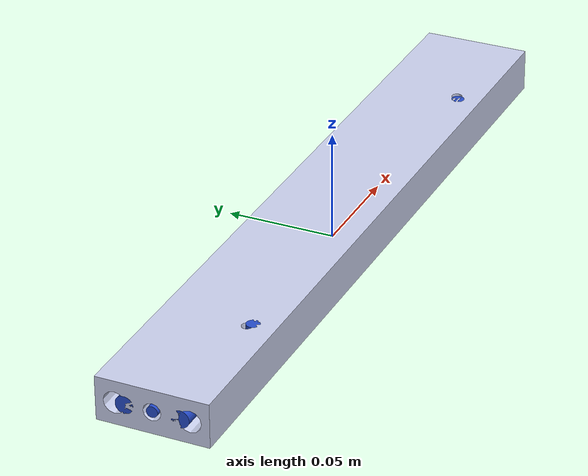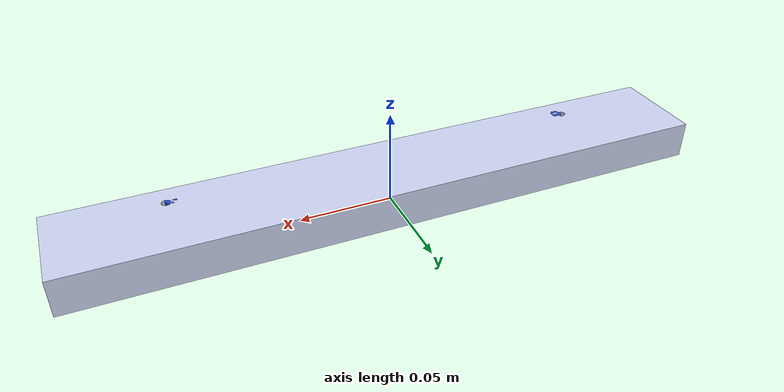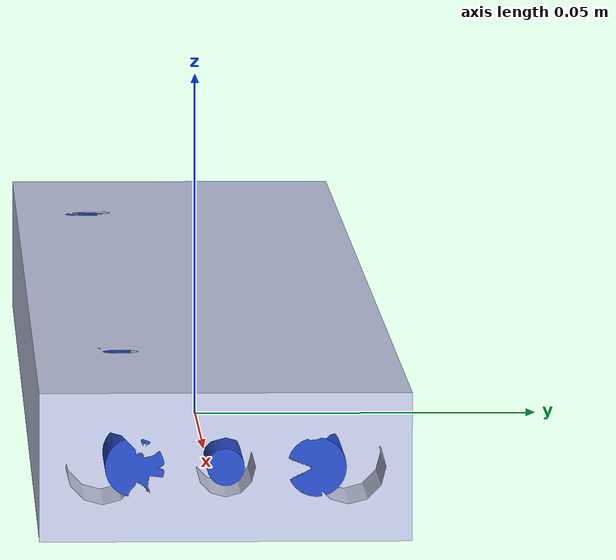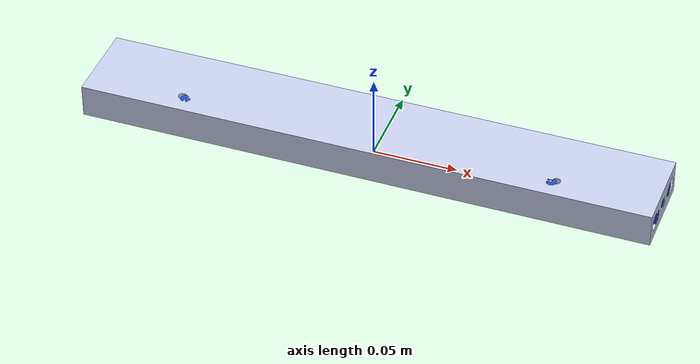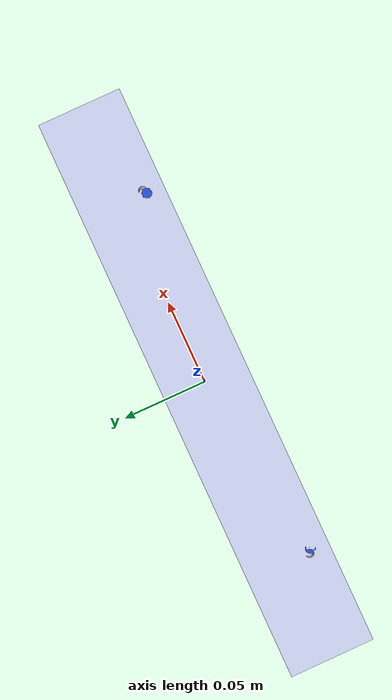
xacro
<?xml version="1.0" encoding="utf-8"?>
<robot name="PART2.SLDPRT" xmlns:xacro="http://www.ros.org/wiki/xacro">

	<link name="PART2.SLDPRT">
		<inertial>
			<origin xyz="9.5872E-19 1.5409E-05 0.0099941" rpy="0 0 0"></origin>
			<mass value="0.33131"></mass>
			<inertia ixx="8.0281E-05" ixy="-3.3402E-20" ixz="1.6479E-20" iyy="0.0030691" iyz="2.5556E-08" izz="0.0031268"></inertia>
		</inertial>
		<visual>
			<origin xyz="0 0 0" rpy="0 0 0"></origin>
			<geometry>
				<mesh filename="package://object_description/urdfs_from_hj/PART2.SLDPRT/meshes/PART2.SLDPRT.STL"></mesh>
			</geometry>
			<material name="">
				<color rgba="0.79216 0.81961 0.93333 1"></color>
			</material>
		</visual>
		<collision>
			<origin xyz="0 0 0" rpy="0 0 0"></origin>
			<geometry>
				<mesh filename="package://object_description/urdfs_from_hj/PART2.SLDPRT/meshes/PART2.SLDPRT.STL"></mesh>
			</geometry>
		</collision>
	</link>
	<link name="PART2 hole blocked 1">
		<visual>
			<origin xyz="0 0 0" rpy="0 0 0"></origin>
			<geometry>
				<cylinder length="0.023" radius="0.004"></cylinder>
			</geometry>
		</visual>
	</link>
	<link name="PART2 hole blocked 2">
		<visual>
			<origin xyz="0 0 0" rpy="0 0 0"></origin>
			<geometry>
				<cylinder length="0.023" radius="0.004"></cylinder>
			</geometry>
		</visual>
	</link>
	<link name="PART2 hole blocked 3">
		<visual>
			<origin xyz="0 0 0" rpy="0 0 0"></origin>
			<geometry>
				<cylinder length="0.023" radius="0.0025"></cylinder>
			</geometry>
		</visual>
	</link>
	<link name="PART2 hole blocked 4">
		<visual>
			<origin xyz="0 0 0" rpy="0 0 0"></origin>
			<geometry>
				<cylinder length="0.023" radius="0.0025"></cylinder>
			</geometry>
		</visual>
	</link>
	<link name="PART2 hole blocked 5">
		<visual>
			<origin xyz="0 0 0" rpy="0 0 0"></origin>
			<geometry>
				<cylinder length="0.023" radius="0.004"></cylinder>
			</geometry>
		</visual>
	</link>
	<link name="PART2 hole blocked 6">
		<visual>
			<origin xyz="0 0 0" rpy="0 0 0"></origin>
			<geometry>
				<cylinder length="0.023" radius="0.004"></cylinder>
			</geometry>
		</visual>
	</link>
	<link name="PART2 hole blocked 7">
		<visual>
			<origin xyz="0 0 0" rpy="0 0 0"></origin>
			<geometry>
				<cylinder length="0.013" radius="0.003"></cylinder>
			</geometry>
		</visual>
	</link>
	<link name="PART2 hole blocked 8">
		<visual>
			<origin xyz="0 0 0" rpy="0 0 0"></origin>
			<geometry>
				<cylinder length="0.013" radius="0.003"></cylinder>
			</geometry>
		</visual>
	</link>
	<joint name="PART2 hole blocked 1 joint" type="fixed">
		<origin xyz="-0.1585 -0.0122 0.01" rpy="-0.0 1.57079632679 0.0"></origin>
		<parent link="PART2.SLDPRT"></parent>
		<child link="PART2 hole blocked 1"></child>
	</joint>
	<joint name="PART2 hole blocked 2 joint" type="fixed">
		<origin xyz="0.1585 -0.0122 0.01" rpy="0.0 -1.57079632679 0.0"></origin>
		<parent link="PART2.SLDPRT"></parent>
		<child link="PART2 hole blocked 2"></child>
	</joint>
	<joint name="PART2 hole blocked 3 joint" type="fixed">
		<origin xyz="-0.1585 0.0 0.01" rpy="-0.0 1.57079632679 0.0"></origin>
		<parent link="PART2.SLDPRT"></parent>
		<child link="PART2 hole blocked 3"></child>
	</joint>
	<joint name="PART2 hole blocked 4 joint" type="fixed">
		<origin xyz="0.1585 0.0 0.01" rpy="0.0 -1.57079632679 0.0"></origin>
		<parent link="PART2.SLDPRT"></parent>
		<child link="PART2 hole blocked 4"></child>
	</joint>
	<joint name="PART2 hole blocked 5 joint" type="fixed">
		<origin xyz="-0.1585 0.0122 0.01" rpy="-0.0 1.57079632679 0.0"></origin>
		<parent link="PART2.SLDPRT"></parent>
		<child link="PART2 hole blocked 5"></child>
	</joint>
	<joint name="PART2 hole blocked 6 joint" type="fixed">
		<origin xyz="0.1585 0.0122 0.01" rpy="0.0 -1.57079632679 0.0"></origin>
		<parent link="PART2.SLDPRT"></parent>
		<child link="PART2 hole blocked 6"></child>
	</joint>
	<joint name="PART2 hole blocked 7 joint" type="fixed">
		<origin xyz="-0.10952 -0.0145 0.0135" rpy="0.0 3.14159265359 0.0"></origin>
		<parent link="PART2.SLDPRT"></parent>
		<child link="PART2 hole blocked 7"></child>
	</joint>
	<joint name="PART2 hole blocked 8 joint" type="fixed">
		<origin xyz="0.10952 -0.0145 0.0135" rpy="0.0 3.14159265359 0.0"></origin>
		<parent link="PART2.SLDPRT"></parent>
		<child link="PART2 hole blocked 8"></child>
	</joint>
	<gazebo reference="PART2 hole blocked 1">
		<material>Gazebo/BlueTransparent</material>
	</gazebo>
	<gazebo reference="PART2 hole blocked 2">
		<material>Gazebo/BlueTransparent</material>
	</gazebo>
	<gazebo reference="PART2 hole blocked 3">
		<material>Gazebo/BlueTransparent</material>
	</gazebo>
	<gazebo reference="PART2 hole blocked 4">
		<material>Gazebo/BlueTransparent</material>
	</gazebo>
	<gazebo reference="PART2 hole blocked 5">
		<material>Gazebo/BlueTransparent</material>
	</gazebo>
	<gazebo reference="PART2 hole blocked 6">
		<material>Gazebo/BlueTransparent</material>
	</gazebo>
	<gazebo reference="PART2 hole blocked 7">
		<material>Gazebo/BlueTransparent</material>
	</gazebo>
	<gazebo reference="PART2 hole blocked 8">
		<material>Gazebo/BlueTransparent</material>
	</gazebo>
</robot>
